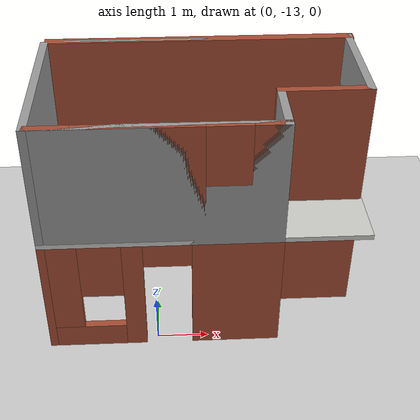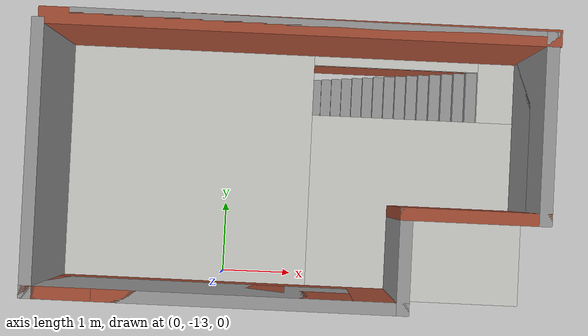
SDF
<sdf version="1.7">
 <world name="default">
  <model name="ground_plane">
   <static>1</static>
   <link name="link">
    <collision name="collision">
     <geometry><plane><normal>0 0 1</normal><size>100 100</size></plane></geometry>
     <surface><friction><ode><mu>100</mu><mu2>50</mu2></ode></friction></surface>
    </collision>
    <visual name="visual">
     <cast_shadows>0</cast_shadows>
     <geometry><plane><normal>0 0 1</normal><size>100 100</size></plane></geometry>
     <material>
      <script><uri>file://media/materials/scripts/gazebo.material</uri><name>Gazebo/Grey</name></script>
     </material>
    </visual>
   </link>
  </model>
  <model name="my_building_0">
   <pose>0.946275 -10.6648 0 0 -0 0</pose>
   <link name="Floor_0">
    <pose>-0 -0.802297 2.5 0 -0 0</pose>
    <visual name="Floor_0_Visual_0">
     <pose>-1.405 0 0.05 0 -0 0</pose>
     <geometry><box><size>3.315 3.38041 0.1</size></box></geometry>
     <material>
      <script><uri>file://media/materials/scripts/gazebo.material</uri><name>Gazebo/CeilingTiled</name></script>
      <ambient>1 1 1 1</ambient>
     </material>
     <meta><layer>1</layer></meta>
    </visual>
    <collision name="Floor_0_Collision_0">
     <geometry><box><size>3.315 3.38041 0.1</size></box></geometry>
     <pose>-1.405 0 0.05 0 -0 0</pose>
    </collision>
    <visual name="Floor_0_Visual_1">
     <pose>1.6575 -0.492703 0.05 0 -0 0</pose>
     <geometry><box><size>2.81 2.395 0.1</size></box></geometry>
     <material>
      <script><uri>file://media/materials/scripts/gazebo.material</uri><name>Gazebo/CeilingTiled</name></script>
      <ambient>1 1 1 1</ambient>
     </material>
     <meta><layer>1</layer></meta>
    </visual>
    <collision name="Floor_0_Collision_1">
     <geometry><box><size>2.81 2.395 0.1</size></box></geometry>
     <pose>1.6575 -0.492703 0.05 0 -0 0</pose>
    </collision>
    <visual name="Floor_0_Visual_2">
     <pose>2.7375 1.1975 0.05 0 -0 0</pose>
     <geometry><box><size>0.65 0.985407 0.1</size></box></geometry>
     <material>
      <script><uri>file://media/materials/scripts/gazebo.material</uri><name>Gazebo/CeilingTiled</name></script>
      <ambient>1 1 1 1</ambient>
     </material>
     <meta><layer>1</layer></meta>
    </visual>
    <collision name="Floor_0_Collision_2">
     <geometry><box><size>0.65 0.985407 0.1</size></box></geometry>
     <pose>2.7375 1.1975 0.05 0 -0 0</pose>
    </collision>
    <visual name="Floor_0_Visual_3">
     <pose>1.3325 1.5275 0.05 0 -0 0</pose>
     <geometry><box><size>2.16 0.325407 0.1</size></box></geometry>
     <material>
      <script><uri>file://media/materials/scripts/gazebo.material</uri><name>Gazebo/CeilingTiled</name></script>
      <ambient>1 1 1 1</ambient>
     </material>
     <meta><layer>1</layer></meta>
    </visual>
    <collision name="Floor_0_Collision_3">
     <geometry><box><size>2.16 0.325407 0.1</size></box></geometry>
     <pose>1.3325 1.5275 0.05 0 -0 0</pose>
    </collision>
   </link>
   <link name="Stairs_0">
    <visual name="Stairs_0_Visual_0">
     <pose>0.3245 0.2325 0.083333 0 -0 1.5708</pose>
     <geometry><box><size>0.66 0.144 0.166667</size></box></geometry>
     <material>
      <script><uri>file://media/materials/scripts/gazebo.material</uri><name>Gazebo/Grey</name></script>
      <ambient>1 1 1 1</ambient>
     </material>
     <meta><layer>0</layer></meta>
    </visual>
    <collision name="Stairs_0_Collision_0">
     <geometry><box><size>0.66 0.144 0.166667</size></box></geometry>
     <pose>0.3245 0.2325 0.083333 0 -0 1.5708</pose>
    </collision>
    <visual name="Stairs_0_Visual_1">
     <pose>0.4685 0.2325 0.25 0 -0 1.5708</pose>
     <geometry><box><size>0.66 0.144 0.166667</size></box></geometry>
     <material>
      <script><uri>file://media/materials/scripts/gazebo.material</uri><name>Gazebo/Grey</name></script>
      <ambient>1 1 1 1</ambient>
     </material>
     <meta><layer>0</layer></meta>
    </visual>
    <collision name="Stairs_0_Collision_1">
     <geometry><box><size>0.66 0.144 0.166667</size></box></geometry>
     <pose>0.4685 0.2325 0.25 0 -0 1.5708</pose>
    </collision>
    <visual name="Stairs_0_Visual_2">
     <pose>0.6125 0.2325 0.416667 0 -0 1.5708</pose>
     <geometry><box><size>0.66 0.144 0.166667</size></box></geometry>
     <material>
      <script><uri>file://media/materials/scripts/gazebo.material</uri><name>Gazebo/Grey</name></script>
      <ambient>1 1 1 1</ambient>
     </material>
     <meta><layer>0</layer></meta>
    </visual>
    <collision name="Stairs_0_Collision_2">
     <geometry><box><size>0.66 0.144 0.166667</size></box></geometry>
     <pose>0.6125 0.2325 0.416667 0 -0 1.5708</pose>
    </collision>
    <visual name="Stairs_0_Visual_3">
     <pose>0.7565 0.2325 0.583333 0 -0 1.5708</pose>
     <geometry><box><size>0.66 0.144 0.166667</size></box></geometry>
     <material>
      <script><uri>file://media/materials/scripts/gazebo.material</uri><name>Gazebo/Grey</name></script>
      <ambient>1 1 1 1</ambient>
     </material>
     <meta><layer>0</layer></meta>
    </visual>
    <collision name="Stairs_0_Collision_3">
     <geometry><box><size>0.66 0.144 0.166667</size></box></geometry>
     <pose>0.7565 0.2325 0.583333 0 -0 1.5708</pose>
    </collision>
    <visual name="Stairs_0_Visual_4">
     <pose>0.9005 0.2325 0.75 0 -0 1.5708</pose>
     <geometry><box><size>0.66 0.144 0.166667</size></box></geometry>
     <material>
      <script><uri>file://media/materials/scripts/gazebo.material</uri><name>Gazebo/Grey</name></script>
      <ambient>1 1 1 1</ambient>
     </material>
     <meta><layer>0</layer></meta>
    </visual>
    <collision name="Stairs_0_Collision_4">
     <geometry><box><size>0.66 0.144 0.166667</size></box></geometry>
     <pose>0.9005 0.2325 0.75 0 -0 1.5708</pose>
    </collision>
    <visual name="Stairs_0_Visual_5">
     <pose>1.0445 0.2325 0.916667 0 -0 1.5708</pose>
     <geometry><box><size>0.66 0.144 0.166667</size></box></geometry>
     <material>
      <script><uri>file://media/materials/scripts/gazebo.material</uri><name>Gazebo/Grey</name></script>
      <ambient>1 1 1 1</ambient>
     </material>
     <meta><layer>0</layer></meta>
    </visual>
    <collision name="Stairs_0_Collision_5">
     <geometry><box><size>0.66 0.144 0.166667</size></box></geometry>
     <pose>1.0445 0.2325 0.916667 0 -0 1.5708</pose>
    </collision>
    <visual name="Stairs_0_Visual_6">
     <pose>1.1885 0.2325 1.08333 0 -0 1.5708</pose>
     <geometry><box><size>0.66 0.144 0.166667</size></box></geometry>
     <material>
      <script><uri>file://media/materials/scripts/gazebo.material</uri><name>Gazebo/Grey</name></script>
      <ambient>1 1 1 1</ambient>
     </material>
     <meta><layer>0</layer></meta>
    </visual>
    <collision name="Stairs_0_Collision_6">
     <geometry><box><size>0.66 0.144 0.166667</size></box></geometry>
     <pose>1.1885 0.2325 1.08333 0 -0 1.5708</pose>
    </collision>
    <visual name="Stairs_0_Visual_7">
     <pose>1.3325 0.2325 1.25 0 -0 1.5708</pose>
     <geometry><box><size>0.66 0.144 0.166667</size></box></geometry>
     <material>
      <script><uri>file://media/materials/scripts/gazebo.material</uri><name>Gazebo/Grey</name></script>
      <ambient>1 1 1 1</ambient>
     </material>
     <meta><layer>0</layer></meta>
    </visual>
    <collision name="Stairs_0_Collision_7">
     <geometry><box><size>0.66 0.144 0.166667</size></box></geometry>
     <pose>1.3325 0.2325 1.25 0 -0 1.5708</pose>
    </collision>
    <visual name="Stairs_0_Visual_8">
     <pose>1.4765 0.2325 1.41667 0 -0 1.5708</pose>
     <geometry><box><size>0.66 0.144 0.166667</size></box></geometry>
     <material>
      <script><uri>file://media/materials/scripts/gazebo.material</uri><name>Gazebo/Grey</name></script>
      <ambient>1 1 1 1</ambient>
     </material>
     <meta><layer>0</layer></meta>
    </visual>
    <collision name="Stairs_0_Collision_8">
     <geometry><box><size>0.66 0.144 0.166667</size></box></geometry>
     <pose>1.4765 0.2325 1.41667 0 -0 1.5708</pose>
    </collision>
    <visual name="Stairs_0_Visual_9">
     <pose>1.6205 0.2325 1.58333 0 -0 1.5708</pose>
     <geometry><box><size>0.66 0.144 0.166667</size></box></geometry>
     <material>
      <script><uri>file://media/materials/scripts/gazebo.material</uri><name>Gazebo/Grey</name></script>
      <ambient>1 1 1 1</ambient>
     </material>
     <meta><layer>0</layer></meta>
    </visual>
    <collision name="Stairs_0_Collision_9">
     <geometry><box><size>0.66 0.144 0.166667</size></box></geometry>
     <pose>1.6205 0.2325 1.58333 0 -0 1.5708</pose>
    </collision>
    <visual name="Stairs_0_Visual_10">
     <pose>1.7645 0.2325 1.75 0 -0 1.5708</pose>
     <geometry><box><size>0.66 0.144 0.166667</size></box></geometry>
     <material>
      <script><uri>file://media/materials/scripts/gazebo.material</uri><name>Gazebo/Grey</name></script>
      <ambient>1 1 1 1</ambient>
     </material>
     <meta><layer>0</layer></meta>
    </visual>
    <collision name="Stairs_0_Collision_10">
     <geometry><box><size>0.66 0.144 0.166667</size></box></geometry>
     <pose>1.7645 0.2325 1.75 0 -0 1.5708</pose>
    </collision>
    <visual name="Stairs_0_Visual_11">
     <pose>1.9085 0.2325 1.91667 0 -0 1.5708</pose>
     <geometry><box><size>0.66 0.144 0.166667</size></box></geometry>
     <material>
      <script><uri>file://media/materials/scripts/gazebo.material</uri><name>Gazebo/Grey</name></script>
      <ambient>1 1 1 1</ambient>
     </material>
     <meta><layer>0</layer></meta>
    </visual>
    <collision name="Stairs_0_Collision_11">
     <geometry><box><size>0.66 0.144 0.166667</size></box></geometry>
     <pose>1.9085 0.2325 1.91667 0 -0 1.5708</pose>
    </collision>
    <visual name="Stairs_0_Visual_12">
     <pose>2.0525 0.2325 2.08333 0 -0 1.5708</pose>
     <geometry><box><size>0.66 0.144 0.166667</size></box></geometry>
     <material>
      <script><uri>file://media/materials/scripts/gazebo.material</uri><name>Gazebo/Grey</name></script>
      <ambient>1 1 1 1</ambient>
     </material>
     <meta><layer>0</layer></meta>
    </visual>
    <collision name="Stairs_0_Collision_12">
     <geometry><box><size>0.66 0.144 0.166667</size></box></geometry>
     <pose>2.0525 0.2325 2.08333 0 -0 1.5708</pose>
    </collision>
    <visual name="Stairs_0_Visual_13">
     <pose>2.1965 0.2325 2.25 0 -0 1.5708</pose>
     <geometry><box><size>0.66 0.144 0.166667</size></box></geometry>
     <material>
      <script><uri>file://media/materials/scripts/gazebo.material</uri><name>Gazebo/Grey</name></script>
      <ambient>1 1 1 1</ambient>
     </material>
     <meta><layer>0</layer></meta>
    </visual>
    <collision name="Stairs_0_Collision_13">
     <geometry><box><size>0.66 0.144 0.166667</size></box></geometry>
     <pose>2.1965 0.2325 2.25 0 -0 1.5708</pose>
    </collision>
    <visual name="Stairs_0_Visual_14">
     <pose>2.3405 0.2325 2.41667 0 -0 1.5708</pose>
     <geometry><box><size>0.66 0.144 0.166667</size></box></geometry>
     <material>
      <script><uri>file://media/materials/scripts/gazebo.material</uri><name>Gazebo/Grey</name></script>
      <ambient>1 1 1 1</ambient>
     </material>
     <meta><layer>0</layer></meta>
    </visual>
    <collision name="Stairs_0_Collision_14">
     <geometry><box><size>0.66 0.144 0.166667</size></box></geometry>
     <pose>2.3405 0.2325 2.41667 0 -0 1.5708</pose>
    </collision>
   </link>
   <link name="Wall_0">
    <collision name="Wall_0_Collision">
     <geometry><box><size>6.05 0.2 2.5</size></box></geometry>
     <pose>0 0 1.25 0 -0 0</pose>
    </collision>
    <visual name="Wall_0_Visual">
     <pose>0 0 1.25 0 -0 0</pose>
     <geometry><box><size>6.05 0.2 2.5</size></box></geometry>
     <material>
      <script><uri>file://media/materials/scripts/gazebo.material</uri><name>Gazebo/Bricks</name></script>
      <ambient>1 1 1 1</ambient>
     </material>
     <meta><layer>0</layer></meta>
    </visual>
    <pose>0.0375 0.7825 0 0 -0 0</pose>
   </link>
   <link name="Wall_1">
    <collision name="Wall_1_Collision">
     <geometry><box><size>2.25 0.15 1.5</size></box></geometry>
     <pose>0 0 0.75 0 -0 0</pose>
    </collision>
    <visual name="Wall_1_Visual">
     <pose>0 0 0.75 0 -0 0</pose>
     <geometry><box><size>2.25 0.15 1.5</size></box></geometry>
     <material>
      <script><uri>file://media/materials/scripts/gazebo.material</uri><name>Gazebo/Bricks</name></script>
      <ambient>1 1 1 1</ambient>
     </material>
     <meta><layer>0</layer></meta>
    </visual>
    <pose>2.9625 -0.2675 0 0 -0 -1.5708</pose>
   </link>
   <link name="Wall_10">
    <collision name="Wall_10_Collision">
     <geometry><box><size>1.25 0.15 2.5</size></box></geometry>
     <pose>0 0 1.25 0 -0 0</pose>
    </collision>
    <visual name="Wall_10_Visual">
     <pose>0 0 1.25 0 -0 0</pose>
     <geometry><box><size>1.25 0.15 2.5</size></box></geometry>
     <material>
      <script><uri>file://media/materials/scripts/gazebo.material</uri><name>Gazebo/Grey</name></script>
      <ambient>1 1 1 1</ambient>
     </material>
     <meta><layer>1</layer></meta>
    </visual>
    <pose>1.3625 -1.8675 2.5 0 -0 -1.5708</pose>
   </link>
   <link name="Wall_11">
    <collision name="Wall_11_Collision">
     <geometry><box><size>4.5 0.15 2.5</size></box></geometry>
     <pose>0 0 1.25 0 -0 0</pose>
    </collision>
    <visual name="Wall_11_Visual">
     <pose>0 0 1.25 0 -0 0</pose>
     <geometry><box><size>4.5 0.15 2.5</size></box></geometry>
     <material>
      <script><uri>file://media/materials/scripts/gazebo.material</uri><name>Gazebo/Grey</name></script>
      <ambient>1 1 1 1</ambient>
     </material>
     <meta><layer>1</layer></meta>
    </visual>
    <pose>-0.8125 -2.4175 2.5 0 -0 3.14159</pose>
   </link>
   <link name="Wall_12">
    <collision name="Wall_12_Collision">
     <geometry><box><size>3.25 0.15 2.5</size></box></geometry>
     <pose>0 0 1.25 0 -0 0</pose>
    </collision>
    <visual name="Wall_12_Visual">
     <pose>0 0 1.25 0 -0 0</pose>
     <geometry><box><size>3.25 0.15 2.5</size></box></geometry>
     <material>
      <script><uri>file://media/materials/scripts/gazebo.material</uri><name>Gazebo/Grey</name></script>
      <ambient>1 1 1 1</ambient>
     </material>
     <meta><layer>1</layer></meta>
    </visual>
    <pose>-2.9875 -0.8675 2.5 0 -0 1.5708</pose>
   </link>
   <link name="Wall_14">
    <collision name="Wall_14_Collision">
     <geometry><box><size>5.67008 0.15 2.5</size></box></geometry>
     <pose>0 0 1.25 0 -0 0</pose>
    </collision>
    <visual name="Wall_14_Visual">
     <pose>0 0 1.25 0 -0 0</pose>
     <geometry><box><size>5.67008 0.15 2.5</size></box></geometry>
     <material>
      <script><uri>file://media/materials/scripts/gazebo.material</uri><name>Gazebo/Grey</name></script>
      <ambient>1 1 1 1</ambient>
     </material>
     <meta><layer>1</layer></meta>
    </visual>
    <pose>0.2025 0.7975 2.5 0 -0 -0.005435</pose>
   </link>
   <link name="Wall_15">
    <collision name="Wall_15_Collision">
     <geometry><box><size>2.25 0.15 2.5</size></box></geometry>
     <pose>0 0 1.25 0 -0 0</pose>
    </collision>
    <visual name="Wall_15_Visual">
     <pose>0 0 1.25 0 -0 0</pose>
     <geometry><box><size>2.25 0.15 2.5</size></box></geometry>
     <material>
      <script><uri>file://media/materials/scripts/gazebo.material</uri><name>Gazebo/Grey</name></script>
      <ambient>1 1 1 1</ambient>
     </material>
     <meta><layer>1</layer></meta>
    </visual>
    <pose>2.9625 -0.2675 2.5 0 -0 -1.5708</pose>
   </link>
   <link name="Wall_16">
    <collision name="Wall_16_Collision">
     <geometry><box><size>1.75 0.15 2.5</size></box></geometry>
     <pose>0 0 1.25 0 -0 0</pose>
    </collision>
    <visual name="Wall_16_Visual">
     <pose>0 0 1.25 0 -0 0</pose>
     <geometry><box><size>1.75 0.15 2.5</size></box></geometry>
     <material>
      <script><uri>file://media/materials/scripts/gazebo.material</uri><name>Gazebo/Bricks</name></script>
      <ambient>1 1 1 1</ambient>
     </material>
     <meta><layer>1</layer></meta>
    </visual>
    <pose>2.1625 -1.3175 2.5 0 -0 3.14159</pose>
   </link>
   <link name="Wall_17">
    <collision name="Wall_17_Collision">
     <geometry><box><size>1.25 0.15 2.5</size></box></geometry>
     <pose>0 0 1.25 0 -0 0</pose>
    </collision>
    <visual name="Wall_17_Visual">
     <pose>0 0 1.25 0 -0 0</pose>
     <geometry><box><size>1.25 0.15 2.5</size></box></geometry>
     <material>
      <script><uri>file://media/materials/scripts/gazebo.material</uri><name>Gazebo/Grey</name></script>
      <ambient>1 1 1 1</ambient>
     </material>
     <meta><layer>1</layer></meta>
    </visual>
    <pose>1.3625 -1.8675 2.5 0 -0 -1.5708</pose>
   </link>
   <link name="Wall_18">
    <pose>-0.8125 -2.4175 2.5 0 -0 3.14159</pose>
    <visual name="Wall_18_Visual_0">
     <pose>-1.9275 0 1.25 0 -0 0</pose>
     <geometry><box><size>0.645 0.15 2.5</size></box></geometry>
     <material>
      <script><uri>file://media/materials/scripts/gazebo.material</uri><name>Gazebo/Bricks</name></script>
      <ambient>1 1 1 1</ambient>
     </material>
     <meta><layer>1</layer></meta>
    </visual>
    <collision name="Wall_18_Collision_0">
     <geometry><box><size>0.645 0.15 2.5</size></box></geometry>
     <pose>-1.9275 0 1.25 0 -0 0</pose>
    </collision>
    <visual name="Wall_18_Visual_1">
     <pose>0.3225 0 0.25 0 -0 0</pose>
     <geometry><box><size>3.855 0.15 0.5</size></box></geometry>
     <material>
      <script><uri>file://media/materials/scripts/gazebo.material</uri><name>Gazebo/Bricks</name></script>
      <ambient>1 1 1 1</ambient>
     </material>
     <meta><layer>1</layer></meta>
    </visual>
    <collision name="Wall_18_Collision_1">
     <geometry><box><size>3.855 0.15 0.5</size></box></geometry>
     <pose>0.3225 0 0.25 0 -0 0</pose>
    </collision>
    <visual name="Wall_18_Visual_2">
     <pose>-0.095 0 1.5 0 -0 0</pose>
     <geometry><box><size>1.42 0.15 2</size></box></geometry>
     <material>
      <script><uri>file://media/materials/scripts/gazebo.material</uri><name>Gazebo/Bricks</name></script>
      <ambient>1 1 1 1</ambient>
     </material>
     <meta><layer>1</layer></meta>
    </visual>
    <collision name="Wall_18_Collision_2">
     <geometry><box><size>1.42 0.15 2</size></box></geometry>
     <pose>-0.095 0 1.5 0 -0 0</pose>
    </collision>
    <visual name="Wall_18_Visual_3">
     <pose>1.8325 0 1.5 0 -0 0</pose>
     <geometry><box><size>0.835 0.15 2</size></box></geometry>
     <material>
      <script><uri>file://media/materials/scripts/gazebo.material</uri><name>Gazebo/Bricks</name></script>
      <ambient>1 1 1 1</ambient>
     </material>
     <meta><layer>1</layer></meta>
    </visual>
    <collision name="Wall_18_Collision_3">
     <geometry><box><size>0.835 0.15 2</size></box></geometry>
     <pose>1.8325 0 1.5 0 -0 0</pose>
    </collision>
    <visual name="Wall_18_Visual_4">
     <pose>-1.205 0 1.9 0 -0 0</pose>
     <geometry><box><size>0.8 0.15 1.2</size></box></geometry>
     <material>
      <script><uri>file://media/materials/scripts/gazebo.material</uri><name>Gazebo/Bricks</name></script>
      <ambient>1 1 1 1</ambient>
     </material>
     <meta><layer>1</layer></meta>
    </visual>
    <collision name="Wall_18_Collision_4">
     <geometry><box><size>0.8 0.15 1.2</size></box></geometry>
     <pose>-1.205 0 1.9 0 -0 0</pose>
    </collision>
    <visual name="Wall_18_Visual_5">
     <pose>1.015 0 1.9 0 -0 0</pose>
     <geometry><box><size>0.8 0.15 1.2</size></box></geometry>
     <material>
      <script><uri>file://media/materials/scripts/gazebo.material</uri><name>Gazebo/Bricks</name></script>
      <ambient>1 1 1 1</ambient>
     </material>
     <meta><layer>1</layer></meta>
    </visual>
    <collision name="Wall_18_Collision_5">
     <geometry><box><size>0.8 0.15 1.2</size></box></geometry>
     <pose>1.015 0 1.9 0 -0 0</pose>
    </collision>
   </link>
   <link name="Wall_19">
    <collision name="Wall_19_Collision">
     <geometry><box><size>3.25 0.15 2.5</size></box></geometry>
     <pose>0 0 1.25 0 -0 0</pose>
    </collision>
    <visual name="Wall_19_Visual">
     <pose>0 0 1.25 0 -0 0</pose>
     <geometry><box><size>3.25 0.15 2.5</size></box></geometry>
     <material>
      <script><uri>file://media/materials/scripts/gazebo.material</uri><name>Gazebo/Bricks</name></script>
      <ambient>1 1 1 1</ambient>
     </material>
     <meta><layer>1</layer></meta>
    </visual>
    <pose>-2.9875 -0.8675 2.5 0 -0 1.5708</pose>
   </link>
   <link name="Wall_2">
    <collision name="Wall_2_Collision">
     <geometry><box><size>1.75 0.15 2.5</size></box></geometry>
     <pose>0 0 1.25 0 -0 0</pose>
    </collision>
    <visual name="Wall_2_Visual">
     <pose>0 0 1.25 0 -0 0</pose>
     <geometry><box><size>1.75 0.15 2.5</size></box></geometry>
     <material>
      <script><uri>file://media/materials/scripts/gazebo.material</uri><name>Gazebo/Bricks</name></script>
      <ambient>1 1 1 1</ambient>
     </material>
     <meta><layer>0</layer></meta>
    </visual>
    <pose>2.1625 -1.3175 0 0 -0 3.14159</pose>
   </link>
   <link name="Wall_3">
    <collision name="Wall_3_Collision">
     <geometry><box><size>1.25 0.15 2.5</size></box></geometry>
     <pose>0 0 1.25 0 -0 0</pose>
    </collision>
    <visual name="Wall_3_Visual">
     <pose>0 0 1.25 0 -0 0</pose>
     <geometry><box><size>1.25 0.15 2.5</size></box></geometry>
     <material>
      <script><uri>file://media/materials/scripts/gazebo.material</uri><name>Gazebo/Grey</name></script>
      <ambient>1 1 1 1</ambient>
     </material>
     <meta><layer>0</layer></meta>
    </visual>
    <pose>1.3625 -1.8675 0 0 -0 -1.5708</pose>
   </link>
   <link name="Wall_4">
    <pose>-0.8125 -2.4175 0 0 -0 3.14159</pose>
    <visual name="Wall_4_Visual_0">
     <pose>-1.4025 0 1.25 0 -0 0</pose>
     <geometry><box><size>1.695 0.15 2.5</size></box></geometry>
     <material>
      <script><uri>file://media/materials/scripts/gazebo.material</uri><name>Gazebo/Bricks</name></script>
      <ambient>1 1 1 1</ambient>
     </material>
     <meta><layer>0</layer></meta>
    </visual>
    <collision name="Wall_4_Collision_0">
     <geometry><box><size>1.695 0.15 2.5</size></box></geometry>
     <pose>-1.4025 0 1.25 0 -0 0</pose>
    </collision>
    <visual name="Wall_4_Visual_1">
     <pose>0.54 0 1.25 0 -0 0</pose>
     <geometry><box><size>0.39 0.15 2.5</size></box></geometry>
     <material>
      <script><uri>file://media/materials/scripts/gazebo.material</uri><name>Gazebo/Bricks</name></script>
      <ambient>1 1 1 1</ambient>
     </material>
     <meta><layer>0</layer></meta>
    </visual>
    <collision name="Wall_4_Collision_1">
     <geometry><box><size>0.39 0.15 2.5</size></box></geometry>
     <pose>0.54 0 1.25 0 -0 0</pose>
    </collision>
    <visual name="Wall_4_Visual_2">
     <pose>1.4925 0 0.25 0 -0 0</pose>
     <geometry><box><size>1.515 0.15 0.5</size></box></geometry>
     <material>
      <script><uri>file://media/materials/scripts/gazebo.material</uri><name>Gazebo/Bricks</name></script>
      <ambient>1 1 1 1</ambient>
     </material>
     <meta><layer>0</layer></meta>
    </visual>
    <collision name="Wall_4_Collision_2">
     <geometry><box><size>1.515 0.15 0.5</size></box></geometry>
     <pose>1.4925 0 0.25 0 -0 0</pose>
    </collision>
    <visual name="Wall_4_Visual_3">
     <pose>1.8925 0 1.5 0 -0 0</pose>
     <geometry><box><size>0.715 0.15 2</size></box></geometry>
     <material>
      <script><uri>file://media/materials/scripts/gazebo.material</uri><name>Gazebo/Bricks</name></script>
      <ambient>1 1 1 1</ambient>
     </material>
     <meta><layer>0</layer></meta>
    </visual>
    <collision name="Wall_4_Collision_3">
     <geometry><box><size>0.715 0.15 2</size></box></geometry>
     <pose>1.8925 0 1.5 0 -0 0</pose>
    </collision>
    <visual name="Wall_4_Visual_4">
     <pose>1.135 0 1.9 0 -0 0</pose>
     <geometry><box><size>0.8 0.15 1.2</size></box></geometry>
     <material>
      <script><uri>file://media/materials/scripts/gazebo.material</uri><name>Gazebo/Bricks</name></script>
      <ambient>1 1 1 1</ambient>
     </material>
     <meta><layer>0</layer></meta>
    </visual>
    <collision name="Wall_4_Collision_4">
     <geometry><box><size>0.8 0.15 1.2</size></box></geometry>
     <pose>1.135 0 1.9 0 -0 0</pose>
    </collision>
    <visual name="Wall_4_Visual_5">
     <pose>-0.105 0 2.25 0 -0 0</pose>
     <geometry><box><size>0.9 0.15 0.5</size></box></geometry>
     <material>
      <script><uri>file://media/materials/scripts/gazebo.material</uri><name>Gazebo/Bricks</name></script>
      <ambient>1 1 1 1</ambient>
     </material>
     <meta><layer>0</layer></meta>
    </visual>
    <collision name="Wall_4_Collision_5">
     <geometry><box><size>0.9 0.15 0.5</size></box></geometry>
     <pose>-0.105 0 2.25 0 -0 0</pose>
    </collision>
   </link>
   <link name="Wall_5">
    <collision name="Wall_5_Collision">
     <geometry><box><size>3.25 0.15 2.5</size></box></geometry>
     <pose>0 0 1.25 0 -0 0</pose>
    </collision>
    <visual name="Wall_5_Visual">
     <pose>0 0 1.25 0 -0 0</pose>
     <geometry><box><size>3.25 0.15 2.5</size></box></geometry>
     <material>
      <script><uri>file://media/materials/scripts/gazebo.material</uri><name>Gazebo/Bricks</name></script>
      <ambient>1 1 1 1</ambient>
     </material>
     <meta><layer>0</layer></meta>
    </visual>
    <pose>-2.9875 -0.8675 0 0 -0 1.5708</pose>
   </link>
   <link name="Wall_7">
    <collision name="Wall_7_Collision">
     <geometry><box><size>6.05 0.2 2.5</size></box></geometry>
     <pose>0 0 1.25 0 -0 0</pose>
    </collision>
    <visual name="Wall_7_Visual">
     <pose>0 0 1.25 0 -0 0</pose>
     <geometry><box><size>6.05 0.2 2.5</size></box></geometry>
     <material>
      <script><uri>file://media/materials/scripts/gazebo.material</uri><name>Gazebo/Bricks</name></script>
      <ambient>1 1 1 1</ambient>
     </material>
     <meta><layer>1</layer></meta>
    </visual>
    <pose>0.0375 0.7825 2.5 0 -0 0</pose>
   </link>
   <link name="Wall_8">
    <collision name="Wall_8_Collision">
     <geometry><box><size>2.25 0.15 1.5</size></box></geometry>
     <pose>0 0 0.75 0 -0 0</pose>
    </collision>
    <visual name="Wall_8_Visual">
     <pose>0 0 0.75 0 -0 0</pose>
     <geometry><box><size>2.25 0.15 1.5</size></box></geometry>
     <material>
      <script><uri>file://media/materials/scripts/gazebo.material</uri><name>Gazebo/Grey</name></script>
      <ambient>1 1 1 1</ambient>
     </material>
     <meta><layer>1</layer></meta>
    </visual>
    <pose>2.9625 -0.2675 2.5 0 -0 -1.5708</pose>
   </link>
   <link name="Wall_9">
    <collision name="Wall_9_Collision">
     <geometry><box><size>1.75 0.15 2.5</size></box></geometry>
     <pose>0 0 1.25 0 -0 0</pose>
    </collision>
    <visual name="Wall_9_Visual">
     <pose>0 0 1.25 0 -0 0</pose>
     <geometry><box><size>1.75 0.15 2.5</size></box></geometry>
     <material>
      <script><uri>file://media/materials/scripts/gazebo.material</uri><name>Gazebo/Grey</name></script>
      <ambient>1 1 1 1</ambient>
     </material>
     <meta><layer>1</layer></meta>
    </visual>
    <pose>2.1625 -1.3175 2.5 0 -0 3.14159</pose>
   </link>
   <static>1</static>
  </model>
 </world>
</sdf>
